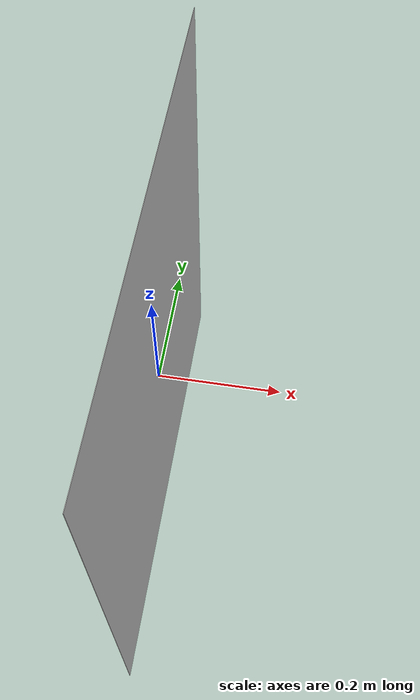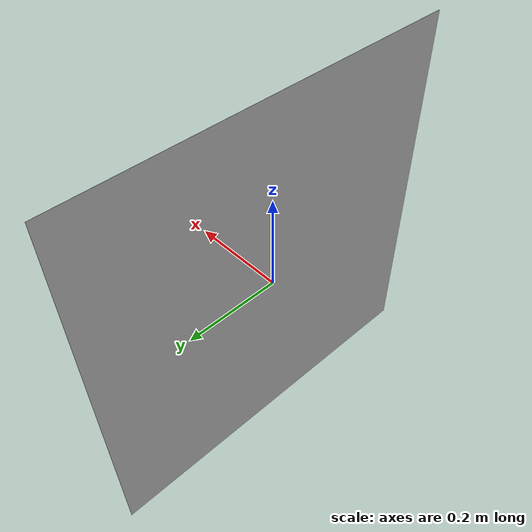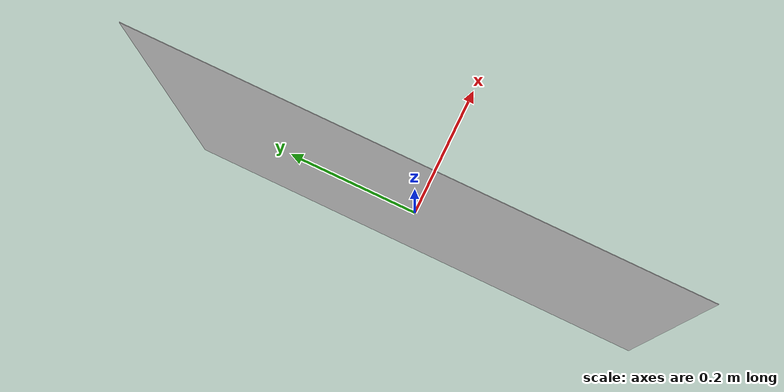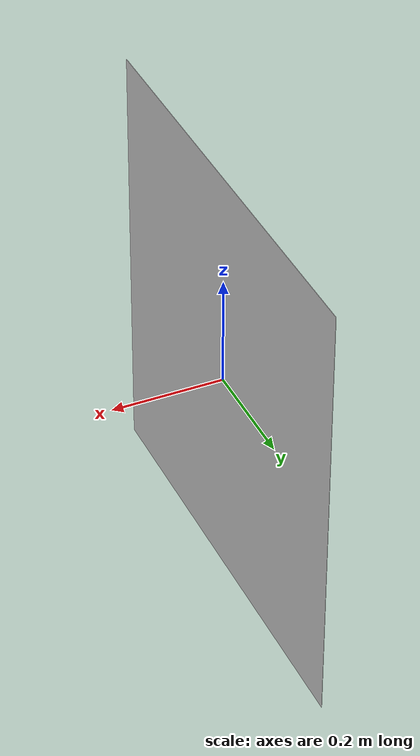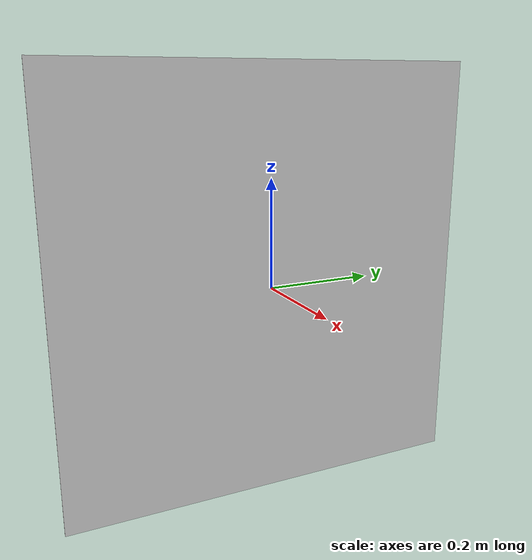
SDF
<?xml version="1.0" ?>
<sdf version="1.6">
  <model name="aruco_marker">
    <static>true</static>

    <link name="marker_link">
      <visual name="marker_visual">
        <geometry>
          <plane>
            <normal>1 0 0</normal>
            <size>0.8 0.8</size>
          </plane>
        </geometry>

        <material>
          <script>
            <uri>model://aruco_marker/materials/scripts</uri>
            <uri>model://aruco_marker/materials/textures</uri>
            <name>Aruco/InventoryStationA</name>
          </script>
        </material>
      </visual>
    </link>
  </model>
</sdf>
